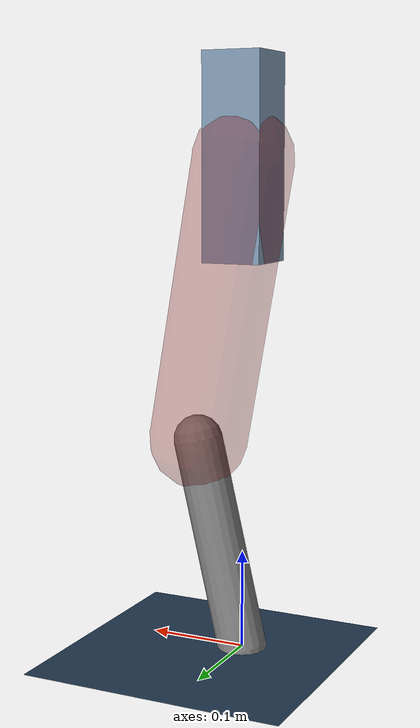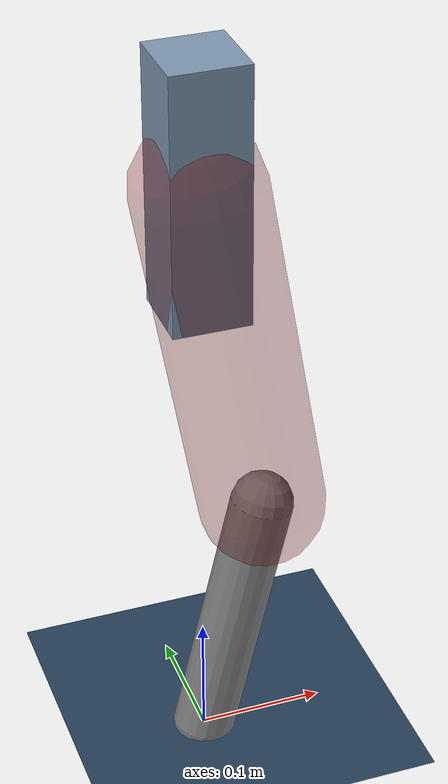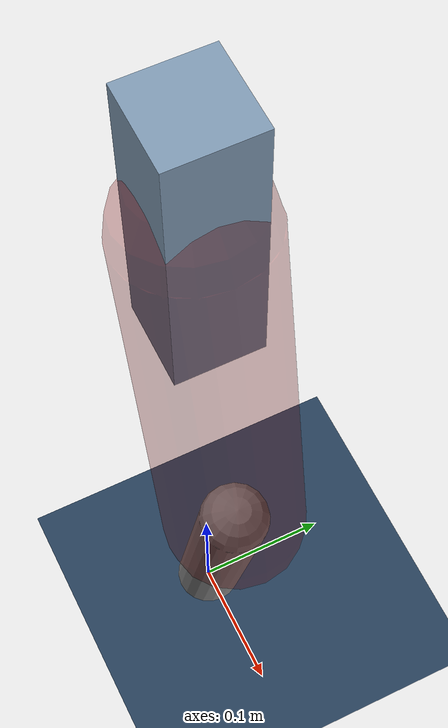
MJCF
<mujoco model="Hopper2D">
	<compiler inertiafromgeom="true" angle="radian" />
	<option timestep="0.001" integrator="implicit" cone="elliptic" solver="Newton" tolerance="1e-10" />

	<default>
		<geom contype="1" conaffinity="1" condim="3" friction="2 0.005 0.0001" solref="0.005 1" />
		<joint limited="true" damping="0.1" />
	</default>

	<asset>
		<texture name="skybox" type="skybox" builtin="gradient" rgb1=".4 .6 .8" rgb2="0 0 0" width="800" height="800" />
		<texture name="grid" type="2d" builtin="checker" rgb1=".1 .2 .3" rgb2=".2 .3 .4" width="300" height="300" mark="edge" markrgb=".2 .3 .4" />
		<material name="ground" texture="grid" texrepeat="1 1" texuniform="true" reflectance="0.1" />
		<material name="leg" rgba="0.5 0.6 0.7 1" />
	</asset>

	<worldbody>

		<geom name="floor" type="plane" size="5 5 0.25" material="ground" />

		<light directional="false" diffuse="0.8 0.8 0.8" specular="0.3 0.3 0.3" pos="0 0 2" dir="0 0 -1" />
		<light mode="targetbodycom" target="base" directional="false" diffuse="0.8 0.8 0.8" specular="0.3 0.3 0.3" pos="0 0 2" dir="0 0 -1" />

		<camera name="fixed" pos="0 -2 1" xyaxes="1 0 0 0 0 1" />
		<camera name="tracking" mode="trackcom" pos="0 -3 1" />

		<body name="root" pos="0 0 0.49238107454150426">
			<joint name="slide_x" type="slide" axis="1 0 0" range="-100 100" />
			<joint name="slide_z" type="slide" axis="0 0 1" range="0 10" />

			<body name="base" pos="0 0 0">
				<geom name="torso" type="box" size="0.03 0.03 0.1" mass="2.276" material="leg" />

				<body name="link1" pos="0 0 0" euler="0 1.3968155398593847 0">
					<joint type="hinge" axis="0 -1 0" pos="0 0 0" name="hinge1" limited="true" range="-3.14 3.14" stiffness="0" damping="0.1" />
					<geom name="thigh" type="capsule" fromto="0 0 0 0.2853061526437988 0 0" size="0.05" rgba="0.5 0 0 0.3" mass="0.9492266121382569" />

					<body name="link2" pos="0.2853061526437988 0 0" euler="0 0.4035055432289476 0">
						<joint type="hinge" axis="0 -1 0" pos="0 0 0" name="hinge2" limited="true" range="-3.14 3.14" stiffness="0" damping="0.1" />
						<geom name="shank" type="capsule" fromto="0 0 0 0.2170749218977054 0 0" size="0.025" mass="0.4152599375181643" />

					</body>
				</body>
			</body>
		</body>
	</worldbody>

	<actuator>
		<motor name="torque1" joint="hinge1" ctrlrange="-80.69597984112038 80.69597984112038" ctrllimited="true" gear="1" />
		<motor name="torque2" joint="hinge2" ctrlrange="-78.35332556048739 78.35332556048739" ctrllimited="true" gear="1" />
	</actuator>
</mujoco>
